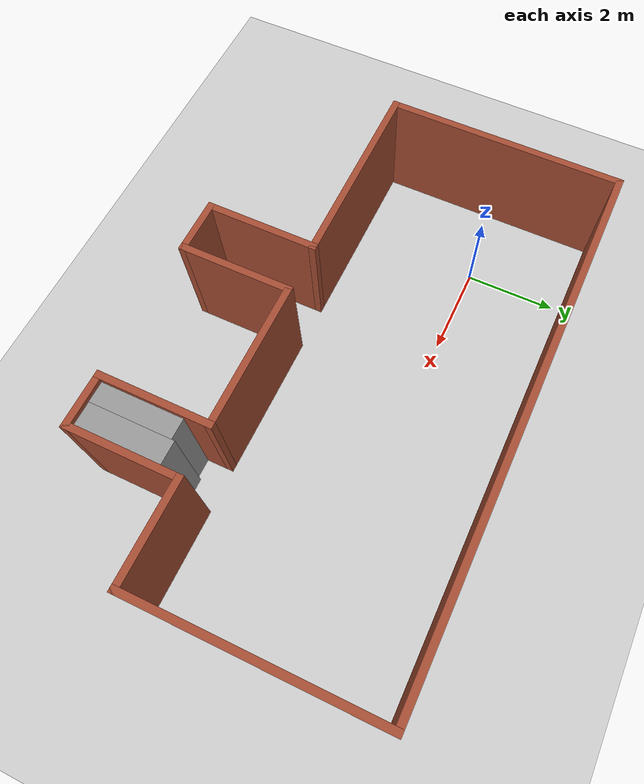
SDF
<sdf version="1.7">
 <world name="default">
  <light name="sun" type="directional">
   <pose>0 0 10 0 -0 0</pose>
   <diffuse>0.8 0.8 0.8 1</diffuse>
   <specular>0.2 0.2 0.2 1</specular>
   <attenuation>
    <range>1000</range>
    <constant>0.9</constant>
    <linear>0.01</linear>
    <quadratic>0.001</quadratic>
   </attenuation>
   <direction>-0.5 0.1 -0.9</direction>
   <spot><inner_angle>0</inner_angle><outer_angle>0</outer_angle><falloff>0</falloff></spot>
  </light>
  <model name="ground_plane">
   <static>1</static>
   <link name="link">
    <collision name="collision">
     <geometry><plane><normal>0 0 1</normal><size>100 100</size></plane></geometry>
     <surface>
      <contact><collide_bitmask>65535</collide_bitmask></contact>
      <friction><ode><mu>100</mu><mu2>50</mu2></ode></friction>
     </surface>
    </collision>
    <visual name="visual">
     <cast_shadows>0</cast_shadows>
     <geometry><plane><normal>0 0 1</normal><size>100 100</size></plane></geometry>
     <material>
      <script><uri>file://media/materials/scripts/gazebo.material</uri><name>Gazebo/Grey</name></script>
     </material>
    </visual>
   </link>
  </model>
  <gravity>0 0 -9.8</gravity>
  <magnetic_field>6e-06 2.3e-05 -4.2e-05</magnetic_field>
  <atmosphere type="adiabatic"/>
  <physics type="ode">
   <max_step_size>0.001</max_step_size>
   <real_time_factor>1</real_time_factor>
   <real_time_update_rate>1000</real_time_update_rate>
  </physics>
  <scene><ambient>0.4 0.4 0.4 1</ambient><background>0.7 0.7 0.7 1</background><shadows>1</shadows></scene>
  <audio><device>default</device></audio>
  <spherical_coordinates>
   <surface_model>EARTH_WGS84</surface_model>
   <latitude_deg>0</latitude_deg>
   <longitude_deg>0</longitude_deg>
   <elevation>0</elevation>
   <heading_deg>0</heading_deg>
  </spherical_coordinates>
  <model name="Untitled">
   <pose>3.87878 -1.45766 0 0 -0 0</pose>
   <link name="Wall_10">
    <collision name="Wall_10_Collision">
     <geometry><box><size>5.25 0.15 2.5</size></box></geometry>
     <pose>0 0 1.25 0 -0 0</pose>
    </collision>
    <visual name="Wall_10_Visual">
     <pose>0 0 1.25 0 -0 0</pose>
     <geometry><box><size>5.25 0.15 2.5</size></box></geometry>
     <material>
      <script><uri>file://media/materials/scripts/gazebo.material</uri><name>Gazebo/Bricks</name></script>
      <ambient>1 1 1 1</ambient>
     </material>
     <meta><layer>0</layer></meta>
    </visual>
    <pose>5.75 1.175 0 0 -0 -1.5708</pose>
   </link>
   <link name="Wall_11">
    <collision name="Wall_11_Collision">
     <geometry><box><size>2.25 0.15 2.5</size></box></geometry>
     <pose>0 0 1.25 0 -0 0</pose>
    </collision>
    <visual name="Wall_11_Visual">
     <pose>0 0 1.25 0 -0 0</pose>
     <geometry><box><size>2.25 0.15 2.5</size></box></geometry>
     <material>
      <script><uri>file://media/materials/scripts/gazebo.material</uri><name>Gazebo/Bricks</name></script>
      <ambient>1 1 1 1</ambient>
     </material>
     <meta><layer>0</layer></meta>
    </visual>
    <pose>4.7 -1.375 0 0 -0 3.14159</pose>
   </link>
   <link name="Wall_15">
    <collision name="Wall_15_Collision">
     <geometry><box><size>2.5 0.15 2.5</size></box></geometry>
     <pose>0 0 1.25 0 -0 0</pose>
    </collision>
    <visual name="Wall_15_Visual">
     <pose>0 0 1.25 0 -0 0</pose>
     <geometry><box><size>2.5 0.15 2.5</size></box></geometry>
     <material>
      <script><uri>file://media/materials/scripts/gazebo.material</uri><name>Gazebo/Bricks</name></script>
      <ambient>1 1 1 1</ambient>
     </material>
     <meta><layer>0</layer></meta>
    </visual>
    <pose>3.65 -2.55 0 0 -0 -1.5708</pose>
   </link>
   <link name="Wall_16">
    <collision name="Wall_16_Collision">
     <geometry><box><size>1.25 0.15 2.5</size></box></geometry>
     <pose>0 0 1.25 0 -0 0</pose>
    </collision>
    <visual name="Wall_16_Visual">
     <pose>0 0 1.25 0 -0 0</pose>
     <geometry><box><size>1.25 0.15 2.5</size></box></geometry>
     <material>
      <script><uri>file://media/materials/scripts/gazebo.material</uri><name>Gazebo/Bricks</name></script>
      <ambient>1 1 1 1</ambient>
     </material>
     <meta><layer>0</layer></meta>
    </visual>
    <pose>3.1 -3.725 0 0 -0 3.14159</pose>
   </link>
   <link name="Wall_17">
    <collision name="Wall_17_Collision">
     <geometry><box><size>2.5 0.15 2.5</size></box></geometry>
     <pose>0 0 1.25 0 -0 0</pose>
    </collision>
    <visual name="Wall_17_Visual">
     <pose>0 0 1.25 0 -0 0</pose>
     <geometry><box><size>2.5 0.15 2.5</size></box></geometry>
     <material>
      <script><uri>file://media/materials/scripts/gazebo.material</uri><name>Gazebo/Bricks</name></script>
      <ambient>1 1 1 1</ambient>
     </material>
     <meta><layer>0</layer></meta>
    </visual>
    <pose>2.55 -2.55 0 0 -0 1.5708</pose>
   </link>
   <link name="Wall_18">
    <collision name="Wall_18_Collision">
     <geometry><box><size>3.25 0.15 2.5</size></box></geometry>
     <pose>0 0 1.25 0 -0 0</pose>
    </collision>
    <visual name="Wall_18_Visual">
     <pose>0 0 1.25 0 -0 0</pose>
     <geometry><box><size>3.25 0.15 2.5</size></box></geometry>
     <material>
      <script><uri>file://media/materials/scripts/gazebo.material</uri><name>Gazebo/Bricks</name></script>
      <ambient>1 1 1 1</ambient>
     </material>
     <meta><layer>0</layer></meta>
    </visual>
    <pose>1 -1.375 0 0 -0 3.14159</pose>
   </link>
   <link name="Wall_19">
    <collision name="Wall_19_Collision">
     <geometry><box><size>2.5 0.15 2.5</size></box></geometry>
     <pose>0 0 1.25 0 -0 0</pose>
    </collision>
    <visual name="Wall_19_Visual">
     <pose>0 0 1.25 0 -0 0</pose>
     <geometry><box><size>2.5 0.15 2.5</size></box></geometry>
     <material>
      <script><uri>file://media/materials/scripts/gazebo.material</uri><name>Gazebo/Bricks</name></script>
      <ambient>1 1 1 1</ambient>
     </material>
     <meta><layer>0</layer></meta>
    </visual>
    <pose>-0.55 -2.55 0 0 -0 -1.5708</pose>
   </link>
   <link name="Wall_20">
    <collision name="Wall_20_Collision">
     <geometry><box><size>1.25 0.15 2.5</size></box></geometry>
     <pose>0 0 1.25 0 -0 0</pose>
    </collision>
    <visual name="Wall_20_Visual">
     <pose>0 0 1.25 0 -0 0</pose>
     <geometry><box><size>1.25 0.15 2.5</size></box></geometry>
     <material>
      <script><uri>file://media/materials/scripts/gazebo.material</uri><name>Gazebo/Bricks</name></script>
      <ambient>1 1 1 1</ambient>
     </material>
     <meta><layer>0</layer></meta>
    </visual>
    <pose>-1.1 -3.725 0 0 -0 3.14159</pose>
   </link>
   <link name="Wall_21">
    <collision name="Wall_21_Collision">
     <geometry><box><size>2.5 0.15 2.5</size></box></geometry>
     <pose>0 0 1.25 0 -0 0</pose>
    </collision>
    <visual name="Wall_21_Visual">
     <pose>0 0 1.25 0 -0 0</pose>
     <geometry><box><size>2.5 0.15 2.5</size></box></geometry>
     <material>
      <script><uri>file://media/materials/scripts/gazebo.material</uri><name>Gazebo/Bricks</name></script>
      <ambient>1 1 1 1</ambient>
     </material>
     <meta><layer>0</layer></meta>
    </visual>
    <pose>-1.65 -2.55 0 0 -0 1.5708</pose>
   </link>
   <link name="Wall_22">
    <collision name="Wall_22_Collision">
     <geometry><box><size>4.25 0.15 2.5</size></box></geometry>
     <pose>0 0 1.25 0 -0 0</pose>
    </collision>
    <visual name="Wall_22_Visual">
     <pose>0 0 1.25 0 -0 0</pose>
     <geometry><box><size>4.25 0.15 2.5</size></box></geometry>
     <material>
      <script><uri>file://media/materials/scripts/gazebo.material</uri><name>Gazebo/Bricks</name></script>
      <ambient>1 1 1 1</ambient>
     </material>
     <meta><layer>0</layer></meta>
    </visual>
    <pose>-3.7 -1.375 0 0 -0 3.14159</pose>
   </link>
   <link name="Wall_23">
    <collision name="Wall_23_Collision">
     <geometry><box><size>5.25 0.15 2.5</size></box></geometry>
     <pose>0 0 1.25 0 -0 0</pose>
    </collision>
    <visual name="Wall_23_Visual">
     <pose>0 0 1.25 0 -0 0</pose>
     <geometry><box><size>5.25 0.15 2.5</size></box></geometry>
     <material>
      <script><uri>file://media/materials/scripts/gazebo.material</uri><name>Gazebo/Bricks</name></script>
      <ambient>1 1 1 1</ambient>
     </material>
     <meta><layer>0</layer></meta>
    </visual>
    <pose>-5.75 1.175 0 0 -0 1.5708</pose>
   </link>
   <link name="Wall_25">
    <collision name="Wall_25_Collision">
     <geometry><box><size>11.65 0.15 2.5</size></box></geometry>
     <pose>0 0 1.25 0 -0 0</pose>
    </collision>
    <visual name="Wall_25_Visual">
     <pose>0 0 1.25 0 -0 0</pose>
     <geometry><box><size>11.65 0.15 2.5</size></box></geometry>
     <material>
      <script><uri>file://media/materials/scripts/gazebo.material</uri><name>Gazebo/Bricks</name></script>
      <ambient>1 1 1 1</ambient>
     </material>
     <meta><layer>0</layer></meta>
    </visual>
    <pose>0 3.725 0 0 -0 0</pose>
   </link>
   <static>1</static>
  </model>
  <model name="unit_box">
   <pose>7.19256 -4.19413 1.19033 4e-06 1e-06 7e-06</pose>
   <link name="link">
    <inertial>
     <mass>1</mass>
     <inertia>
      <ixx>0.166667</ixx>
      <ixy>0</ixy>
      <ixz>0</ixz>
      <iyy>0.166667</iyy>
      <iyz>0</iyz>
      <izz>0.166667</izz>
     </inertia>
    </inertial>
    <collision name="collision"><geometry><box><size>0.503079 1.82035 2.38068</size></box></geometry></collision>
    <visual name="visual">
     <geometry><box><size>0.503079 1.82035 2.38068</size></box></geometry>
     <material>
      <script><name>Gazebo/Grey</name><uri>file://media/materials/scripts/gazebo.material</uri></script>
     </material>
    </visual>
   </link>
  </model>
  <model name="unit_box_clone">
   <pose>6.72243 -4.22997 1.19033 -1e-06 0 7e-06</pose>
   <link name="link">
    <inertial>
     <mass>1</mass>
     <inertia>
      <ixx>0.166667</ixx>
      <ixy>0</ixy>
      <ixz>0</ixz>
      <iyy>0.166667</iyy>
      <iyz>0</iyz>
      <izz>0.166667</izz>
     </inertia>
    </inertial>
    <collision name="collision"><geometry><box><size>0.437172 1.75453 2.38067</size></box></geometry></collision>
    <visual name="visual">
     <geometry><box><size>0.437172 1.75453 2.38067</size></box></geometry>
     <material>
      <script><name>Gazebo/Grey</name><uri>file://media/materials/scripts/gazebo.material</uri></script>
     </material>
    </visual>
   </link>
  </model>
 </world>
</sdf>
